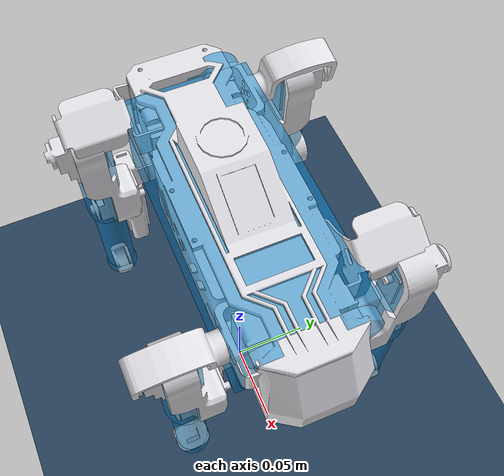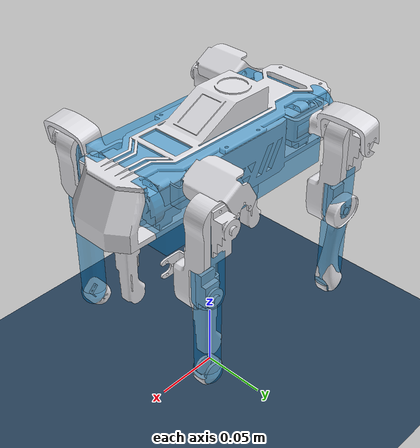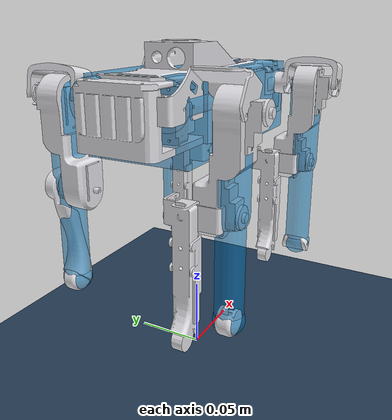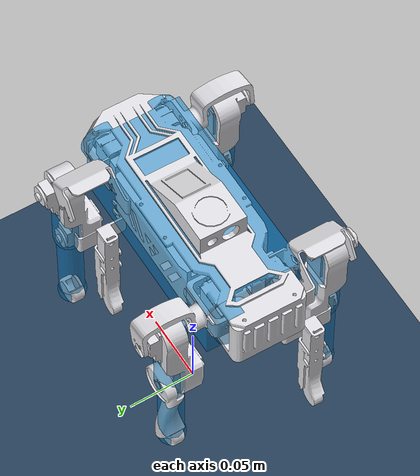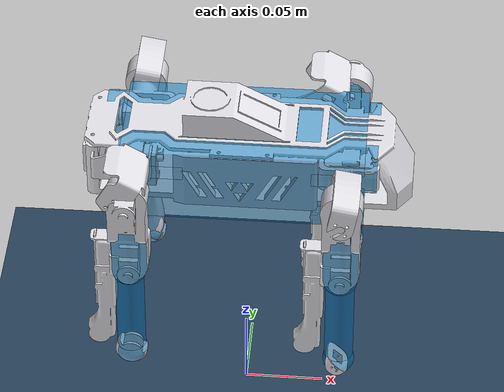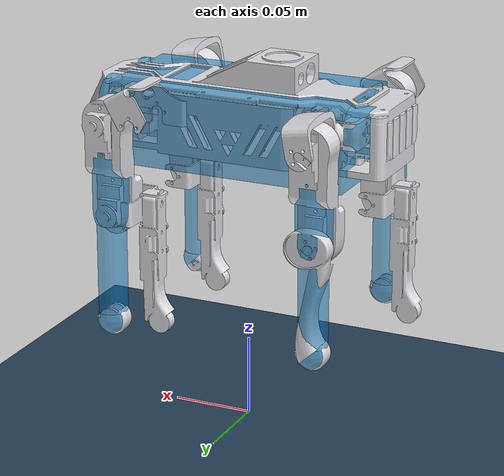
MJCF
<mujoco model="sdog">
  <compiler angle="radian" meshdir="../meshes/"/>
  <size njmax="500" nconmax="100" />
  <option gravity='0 0 -9.806' iterations='50' solver='Newton' timestep='0.005'/>

  <default>
    <default class="visual">
      <geom contype="0" conaffinity="0" group="1" rgba="0.89 0.89 0.91 1" />
    </default>

    <default class="collision">
      <geom contype="1" conaffinity="1" group="0" rgba="0 0.5 0.8 0.5" friction="0.9 0.5 0.1" solimp="0.95 0.99 0.001" solref="0.005 1"/>
    </default>

    <motor ctrlrange="-0.45 0.45" ctrllimited="true"/>
  </default>

  <asset>
    <mesh name="base" file="base.STL" />
    <mesh name="body" file="body.STL" />
    <mesh name="fr_hip" file="fr_hip.STL" />
    <mesh name="fr_thigh" file="fr_thigh.STL" />
    <mesh name="fr_calf" file="fr_calf.STL" />
    <mesh name="fr_foot" file="fr_foot.STL" />
    <mesh name="fl_hip" file="fl_hip.STL" />
    <mesh name="fl_thigh" file="fl_thigh.STL" />
    <mesh name="fl_calf" file="fl_calf.STL" />
    <mesh name="fl_foot" file="fl_foot.STL" />
    <mesh name="br_hip" file="br_hip.STL" />
    <mesh name="br_thigh" file="br_thigh.STL" />
    <mesh name="br_calf" file="br_calf.STL" />
    <mesh name="br_foot" file="br_foot.STL" />
    <mesh name="bl_hip" file="bl_hip.STL" />
    <mesh name="bl_thigh" file="bl_thigh.STL" />
    <mesh name="bl_calf" file="bl_calf.STL" />
    <mesh name="bl_foot" file="bl_foot.STL" />

    <texture type="skybox" builtin="flat" rgb1="0 0 0" rgb2="0 0 0" width="512" height="512"/>
    <texture type="2d" name="groundplane" builtin="checker" mark="edge" rgb1="0.2 0.3 0.4" rgb2="0.1 0.2 0.3" markrgb="0.8 0.8 0.8" width="300" height="300"/>
    <material name="groundplane" texture="groundplane" texuniform="true" texrepeat="5 5" reflectance="0.2"/>
  </asset>

  <visual>
    <headlight diffuse="0.6 0.6 0.6" ambient="0.1 0.1 0.1" specular="0.9 0.9 0.9"/>
    <rgba haze="0.15 0.25 0.35 1"/>
    <global azimuth="-140" elevation="-20"/>
  </visual>

  <worldbody>
    <light directional="true" diffuse=".8 .8 .8" pos="0 0 10" dir="0 0 -10"/>
    <camera name="track" mode="trackcom" pos="0 -0.5 0.3" xyaxes="1 0 0 0 0.707 0.707"/>
    <geom name='floor' type='plane' conaffinity='1' condim='3' contype='1' material='groundplane' pos='0 0 0' size='0 0 1'/>

    <body name="base" pos="0 0 0.20">
      <freejoint name="floating_base" />
      <inertial pos="-0.0034 -0.00025 -0.012" mass="0.188" fullinertia="7.6e-5 5.2e-4 5.5e-4 0 0 0" />

      <geom name="base_vis" type="mesh" mesh="base" class="visual" />
      <geom name="body_vis" type="mesh" mesh="body" class="visual" />

      <geom name="body_col" type="box" size="0.075 0.035 0.025" pos="0 0 -0.01" class="collision"/>

      <site name="imu_site" pos="0 0 0" size="0.005" rgba="1 0 0 1"/>

      <body name="fr_hip" pos="0.062526 -0.02085 0">
        <inertial pos="0.0023 -0.025 0.0055" mass="0.0106" diaginertia="4.1e-6 1.5e-6 4.3e-6" />
        <joint name="fr_hip_joint" axis="1 0 0" range="-0.5 0.5" />
        <geom name="fr_hip_vis" type="mesh" mesh="fr_hip" class="visual"/>
        <geom name="fr_hip_col" type="cylinder" size="0.015 0.02" quat="0.707 0 0.707 0" class="collision"/>

        <body name="fr_thigh" pos="0.00031911 -0.03686 0">
          <inertial pos="-0.00005 0.0027 -0.028" mass="0.045" diaginertia="1.7e-5 1.6e-5 4.2e-6" />
          <joint name="fr_thigh_joint" axis="0 1 0" range="-1 2" />
          <geom name="fr_thigh_vis" type="mesh" mesh="fr_thigh" class="visual"/>
          <geom name="fr_thigh_col" type="capsule" fromto="0 0 0 0 0 -0.059" size="0.011" class="collision"/>

          <body name="fr_calf" pos="-1.45e-05 0 -0.059049">
            <inertial pos="0.0005 -0.0014 -0.035" mass="0.0128" diaginertia="7.4e-6 7.6e-6 5.9e-7" />
            <joint name="fr_calf_joint" axis="0 1 0" range="-2.69 -0.5" />
            <geom name="fr_calf_vis" type="mesh" mesh="fr_calf" class="visual"/>
            <geom name="fr_calf_col" type="capsule" fromto="0 0 0 0 0 -0.066" size="0.009" class="collision"/>

            <body name="fr_foot" pos="0 0 -0.065878">
              <inertial pos="-0.002 -0.00001 -0.002" mass="0.0016" diaginertia="7.5e-8 3.8e-8 7.7e-8" />
              <geom name="fr_foot_vis" type="mesh" mesh="fr_foot" class="visual"/>
              <geom name="fr_foot_col" type="sphere" size="0.01" pos="0 0 0" class="collision" friction="1.5 0.005 0.0001"/>
            </body>
          </body>
        </body>
      </body>

      <body name="fl_hip" pos="0.062526 0.020224 0">
        <inertial pos="0.0023 0.0258 0.0055" mass="0.0106" diaginertia="4.1e-6 1.5e-6 4.3e-6" />
        <joint name="fl_hip_joint" axis="1 0 0" range="-0.5 0.5" />
        <geom name="fl_hip_vis" type="mesh" mesh="fl_hip" class="visual"/>
        <geom name="fl_hip_col" type="cylinder" size="0.015 0.02" quat="0.707 0 0.707 0" class="collision"/>

        <body name="fl_thigh" pos="0.00031911 0.037482 0">
          <inertial pos="-0.00005 -0.0027 -0.028" mass="0.045" diaginertia="1.7e-5 1.6e-5 4.2e-6" />
          <joint name="fl_thigh_joint" axis="0 1 0" range="-1 2" />
          <geom name="fl_thigh_vis" type="mesh" mesh="fl_thigh" class="visual"/>
          <geom name="fl_thigh_col" type="capsule" fromto="0 0 0 0 0 -0.059" size="0.011" class="collision"/>

          <body name="fl_calf" pos="-1.45e-05 0 -0.059049">
            <inertial pos="0.0005 0.0014 -0.035" mass="0.0128" diaginertia="7.4e-6 7.6e-6 5.9e-7" />
            <joint name="fl_calf_joint" axis="0 1 0" range="-2.69 -0.5" />
            <geom name="fl_calf_vis" type="mesh" mesh="fl_calf" class="visual"/>
            <geom name="fl_calf_col" type="capsule" fromto="0 0 0 0 0 -0.066" size="0.009" class="collision"/>

            <body name="fl_foot" pos="-0.00030458 0 -0.065887">
              <inertial pos="-0.0021 0.00001 -0.0022" mass="0.0016" diaginertia="7.5e-8 3.8e-8 7.7e-8" />
              <geom name="fl_foot_vis" type="mesh" mesh="fl_foot" class="visual"/>
              <geom name="fl_foot_col" type="sphere" size="0.01" pos="0 0 0" class="collision" friction="1.5 0.005 0.0001"/>
            </body>
          </body>
        </body>
      </body>

      <body name="br_hip" pos="-0.05616 -0.02085 0">
        <inertial pos="-0.0096 -0.0258 0.0055" mass="0.0106" diaginertia="4.1e-6 1.5e-6 4.3e-6" />
        <joint name="br_hip_joint" axis="1 0 0" range="-0.5 0.5" />
        <geom name="br_hip_vis" type="mesh" mesh="br_hip" class="visual"/>
        <geom name="br_hip_col" type="cylinder" size="0.015 0.02" quat="0.707 0 0.707 0" class="collision"/>

        <body name="br_thigh" pos="-0.011685 -0.03686 0">
          <inertial pos="-0.00005 0.002 0.028" mass="0.045" diaginertia="1.7e-5 1.6e-5 4.2e-6" />
          <joint name="br_thigh_joint" axis="0 1 0" range="-1 2" />
          <geom name="br_thigh_vis" type="mesh" mesh="br_thigh" class="visual"/>
          <geom name="br_thigh_col" type="capsule" fromto="0 0 0 0 0 -0.059" size="0.011" class="collision"/>

          <body name="br_calf" pos="0 0 -0.059063">
            <inertial pos="0.0007 -0.0021 -0.035" mass="0.0128" diaginertia="7.4e-6 7.6e-6 5.9e-7" />
            <joint name="br_calf_joint" axis="0 1 0" range="-2.69 -0.5" />
            <geom name="br_calf_vis" type="mesh" mesh="br_calf" class="visual"/>
            <geom name="br_calf_col" type="capsule" fromto="0 0 0 0 0 -0.066" size="0.009" class="collision"/>

            <body name="br_foot" pos="0 0 -0.065864">
              <inertial pos="-0.0021 -0.0006 -0.0022" mass="0.0016" diaginertia="7.5e-8 3.8e-8 7.7e-8" />
              <geom name="br_foot_vis" type="mesh" mesh="br_foot" class="visual"/>
              <geom name="br_foot_col" type="sphere" size="0.01" pos="0 0 0" class="collision" friction="1.5 0.005 0.0001"/>
            </body>
          </body>
        </body>
      </body>

      <body name="bl_hip" pos="-0.067842 0.02085 0">
         <inertial pos="0.002 0.0258 0.0055" mass="0.0106" diaginertia="4.1e-6 1.5e-6 4.3e-6" />
        <joint name="bl_hip_joint" axis="1 0 0" range="-0.5 0.5" />
        <geom name="bl_hip_vis" type="mesh" mesh="bl_hip" class="visual"/>
        <geom name="bl_hip_col" type="cylinder" size="0.015 0.02" quat="0.707 0 0.707 0" class="collision"/>

        <body name="bl_thigh" pos="0 0.036855 0">
           <inertial pos="-0.00006 -0.002 0.028" mass="0.045" diaginertia="1.7e-5 1.6e-5 4.2e-6" />
          <joint name="bl_thigh_joint" axis="0 1 0" range="-1 2" />
          <geom name="bl_thigh_vis" type="mesh" mesh="bl_thigh" class="visual"/>
          <geom name="bl_thigh_col" type="capsule" fromto="0 0 0 0 0 -0.059" size="0.011" class="collision"/>

          <body name="bl_calf" pos="0 0 -0.059063">
             <inertial pos="0.0007 0.002 -0.035" mass="0.0128" diaginertia="7.4e-6 7.6e-6 5.9e-7" />
            <joint name="bl_calf_joint" axis="0 1 0" range="-2.69 -0.5" />
            <geom name="bl_calf_vis" type="mesh" mesh="bl_calf" class="visual"/>
            <geom name="bl_calf_col" type="capsule" fromto="0 0 0 0 0 -0.066" size="0.009" class="collision"/>

            <body name="bl_foot" pos="0 0 -0.065864">
               <inertial pos="-0.0021 0.0006 -0.0022" mass="0.0016" diaginertia="7.5e-8 3.8e-8 7.7e-8" />
              <geom name="bl_foot_vis" type="mesh" mesh="bl_foot" class="visual"/>
              <geom name="bl_foot_col" type="sphere" size="0.01" pos="0 0 0" class="collision" friction="1.5 0.005 0.0001"/>
            </body>
          </body>
        </body>
      </body>

    </body>
  </worldbody>

  <actuator>
    <motor name="fr_hip_joint" joint="fr_hip_joint" gear="1" />
    <motor name="fr_thigh_joint" joint="fr_thigh_joint" gear="1" />
    <motor name="fr_calf_joint" joint="fr_calf_joint" gear="1" />
    <motor name="fl_hip_joint" joint="fl_hip_joint" gear="1" />
    <motor name="fl_thigh_joint" joint="fl_thigh_joint" gear="1" />
    <motor name="fl_calf_joint" joint="fl_calf_joint" gear="1" />
    <motor name="br_hip_joint" joint="br_hip_joint" gear="1" />
    <motor name="br_thigh_joint" joint="br_thigh_joint" gear="1" />
    <motor name="br_calf_joint" joint="br_calf_joint" gear="1" />
    <motor name="bl_hip_joint" joint="bl_hip_joint" gear="1" />
    <motor name="bl_thigh_joint" joint="bl_thigh_joint" gear="1" />
    <motor name="bl_calf_joint" joint="bl_calf_joint" gear="1" />
  </actuator>

  <contact>
    <exclude body1="base" body2="fr_hip" />
    <exclude body1="fr_hip" body2="fr_thigh" />
    <exclude body1="fr_thigh" body2="fr_calf" />
    <exclude body1="fr_calf" body2="fr_foot" />

    <exclude body1="base" body2="fl_hip" />
    <exclude body1="fl_hip" body2="fl_thigh" />
    <exclude body1="fl_thigh" body2="fl_calf" />
    <exclude body1="fl_calf" body2="fl_foot" />

    <exclude body1="base" body2="br_hip" />
    <exclude body1="br_hip" body2="br_thigh" />
    <exclude body1="br_thigh" body2="br_calf" />
    <exclude body1="br_calf" body2="br_foot" />

    <exclude body1="base" body2="bl_hip" />
    <exclude body1="bl_hip" body2="bl_thigh" />
    <exclude body1="bl_thigh" body2="bl_calf" />
    <exclude body1="bl_calf" body2="bl_foot" />
  </contact>

  <sensor>
      <velocimeter name="base_vel" site="imu_site" />
      <accelerometer name="base_acc" site="imu_site"/>
      <gyro name="base_gyro" site="imu_site"/>
      <framepos name="base_pos" objtype="site" objname="imu_site"/>
      <framequat name="base_quat" objtype="site" objname="imu_site"/>
  </sensor>

</mujoco>
